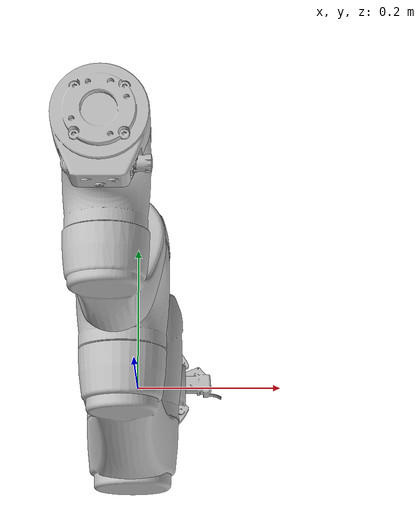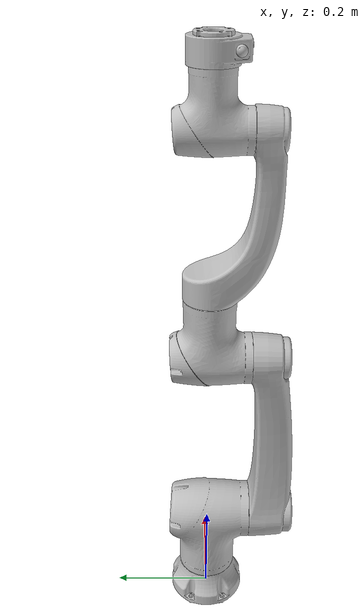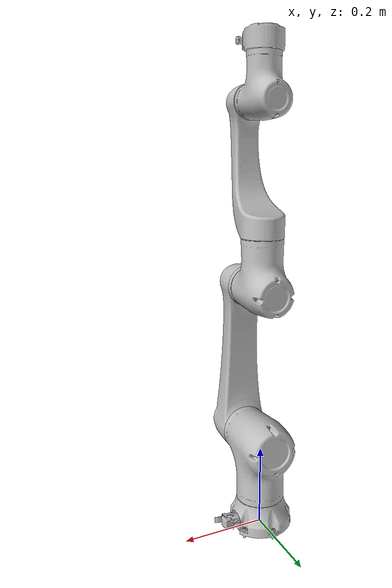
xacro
<robot
  name="elfin5" xmlns:xacro="http://www.ros.org/wiki/xacro">

  <xacro:include filename="$(find elfin_description)/urdf/materials.xacro" />

  <xacro:include filename="$(find elfin_description)/urdf/elfin_robot.gazebo" />

  <xacro:include filename="$(find elfin_description)/urdf/elfin_transmission.xacro" />

  <xacro:property name="PI" value="3.1415926535897931"/>

  <xacro:property name="density" value="3.09"/>

  <link name="world"/>

  <joint name="world_base" type="fixed">
    <origin
      xyz="0 0 0"
      rpy="0 0 0" />
    <parent
      link="world" />
    <child
      link="elfin_base_link" />
  </joint>

  <link name="elfin_base_link"/>

  <joint name="elfin_base_joint" type="fixed">
    <origin
      xyz="0 0 0"
      rpy="0 0 0" />
    <parent
      link="elfin_base_link" />
    <child
      link="elfin_base" />
  </joint>

 <link
    name="elfin_base">
    <inertial>
      <origin
        xyz="-0.000759276386766298 5.75087291643996E-06 0.0302936529364059"
        rpy="0 0 0" />
      <mass
        value="0.976055991186305" />
      <inertia
        ixx="0.00157733373629581"
        ixy="1.16231027909901E-07"
        ixz="-2.16838482265701E-05"
        iyy="0.0014460262404242"
        iyz="-6.75796232258122E-08"
        izz="0.00236575468413022" />
    </inertial>
    <visual>
      <origin
        xyz="0 0 0"
        rpy="0 0 0" />
      <geometry>
        <mesh
          filename="package://elfin_description/meshes/elfin5/elfin_base.STL" />
      </geometry>
      <material
        name="">
        <color
          rgba="0.752941176470588 0.752941176470588 0.752941176470588 1" />
      </material>
    </visual>
    <collision>
      <origin
        xyz="0 0 0"
        rpy="0 0 0" />
      <geometry>
        <mesh
          filename="package://elfin_description/meshes/elfin5/elfin_base.STL" />
      </geometry>
    </collision>
  </link>
  <link
    name="elfin_link1">
    <inertial>
      <origin
        xyz="2.74291285858877E-06 -0.00431106908088009 -0.0357493000420957"
        rpy="0 0 0" />
      <mass
        value="3.25128102774055" />
      <inertia
        ixx="0.0131139015939654"
        ixy="1.53830686193534E-07"
        ixz="4.14641049481159E-07"
        iyy="0.0123861178713592"
        iyz="0.00240614664669851"
        izz="0.00712273876232631" />
    </inertial>
    <visual>
      <origin
        xyz="0 0 0"
        rpy="0 0 0" />
      <geometry>
        <mesh
          filename="package://elfin_description/meshes/elfin5/elfin_link1.STL" />
      </geometry>
      <material
        name="">
        <color
          rgba="0.752941176470588 0.752941176470588 0.752941176470588 1" />
      </material>
    </visual>
    <collision>
      <origin
        xyz="0 0 0"
        rpy="0 0 0" />
      <geometry>
        <mesh
          filename="package://elfin_description/meshes/elfin5/elfin_link1.STL" />
      </geometry>
    </collision>
  </link>
  <joint
    name="elfin_joint1"
    type="revolute">
    <origin
      xyz="0 0 0.22"
      rpy="0 0 0" />
    <parent
      link="elfin_base" />
    <child
      link="elfin_link1" />
    <axis
      xyz="0 0 1" />
    <limit
      lower="-3.14"
      upper="3.14"
      effort="34"
      velocity="1.57" />
  </joint>
  <link
    name="elfin_link2">
    <inertial>
      <origin
        xyz="-4.61141930520168E-06 0.1591743105703 0.127676233728645"
        rpy="0 0 0" />
      <mass
        value="2.80251415493372" />
      <inertia
        ixx="0.0472004127058612"
        ixy="-3.78127975165949E-06"
        ixz="2.96484076164973E-07"
        iyy="0.00279445987467469"
        iyz="0.0015424585085081"
        izz="0.0478757132444163" />
    </inertial>
    <visual>
      <origin
        xyz="0 0 0"
        rpy="0 0 0" />
      <geometry>
        <mesh
          filename="package://elfin_description/meshes/elfin5/elfin_link2.STL" />
      </geometry>
      <material
        name="">
        <color
          rgba="0.752941176470588 0.752941176470588 0.752941176470588 1" />
      </material>
    </visual>
    <collision>
      <origin
        xyz="0 0 0"
        rpy="0 0 0" />
      <geometry>
        <mesh
          filename="package://elfin_description/meshes/elfin5/elfin_link2.STL" />
      </geometry>
    </collision>
  </link>
  <joint
    name="elfin_joint2"
    type="revolute">
    <origin
      xyz="0 0 0"
      rpy="1.5708 0 0" />
    <parent
      link="elfin_link1" />
    <child
      link="elfin_link2" />
    <axis
      xyz="0 0 1" />
    <limit
      lower="-2.35"
      upper="2.35"
      effort="104"
      velocity="1.27" />
  </joint>
  <link
    name="elfin_link3">
    <inertial>
      <origin
        xyz="0.0290082764878197 8.22344842790907E-06 -0.00396673307169731"
        rpy="0 0 0" />
      <mass
        value="1.98577160325313" />
      <inertia
        ixx="0.00325219349943881"
        ixy="-2.70050559654686E-07"
        ixz="-0.00114506857457836"
        iyy="0.00594604197825753"
        iyz="7.00611681888754E-07"
        izz="0.00528005541994538" />
    </inertial>
    <visual>
      <origin
        xyz="0 0 0"
        rpy="0 0 0" />
      <geometry>
        <mesh
          filename="package://elfin_description/meshes/elfin5/elfin_link3.STL" />
      </geometry>
      <material
        name="">
        <color
          rgba="0.752941176470588 0.752941176470588 0.752941176470588 1" />
      </material>
    </visual>
    <collision>
      <origin
        xyz="0 0 0"
        rpy="0 0 0" />
      <geometry>
        <mesh
          filename="package://elfin_description/meshes/elfin5/elfin_link3.STL" />
      </geometry>
    </collision>
  </link>
  <joint
    name="elfin_joint3"
    type="revolute">
    <origin
      xyz="0 0.38 0"
      rpy="-3.1416 0 1.5708" />
    <parent
      link="elfin_link2" />
    <child
      link="elfin_link3" />
    <axis
      xyz="0 0 1" />
    <limit
      lower="-2.61"
      upper="2.61"
      effort="69"
      velocity="1.57" />
  </joint>
  <link
    name="elfin_link4">
    <inertial>
      <origin
        xyz="-3.37325282928927E-05 -0.059246634833044 0.248712399920572"
        rpy="0 0 0" />
      <mass
        value="1.3966627675706" />
      <inertia
        ixx="0.0146417786566676"
        ixy="-1.72570245202171E-06"
        ixz="6.27583250069289E-06"
        iyy="0.0128389262643824"
        iyz="0.00385606704922265"
        izz="0.00311370666742545" />
    </inertial>
    <visual>
      <origin
        xyz="0 0 0"
        rpy="0 0 0" />
      <geometry>
        <mesh
          filename="package://elfin_description/meshes/elfin5/elfin_link4.STL" />
      </geometry>
      <material
        name="">
        <color
          rgba="0.752941176470588 0.752941176470588 0.752941176470588 1" />
      </material>
    </visual>
    <collision>
      <origin
        xyz="0 0 0"
        rpy="0 0 0" />
      <geometry>
        <mesh
          filename="package://elfin_description/meshes/elfin5/elfin_link4.STL" />
      </geometry>
    </collision>
  </link>
  <joint
    name="elfin_joint4"
    type="revolute">
    <origin
      xyz="0 0 0"
      rpy="1.5708 0 1.5708" />
    <parent
      link="elfin_link3" />
    <child
      link="elfin_link4" />
    <axis
      xyz="0 0 1" />
    <limit
      lower="-3.14"
      upper="3.14"
      effort="69"
      velocity="1.57" />
  </joint>
  <link
    name="elfin_link5">
    <inertial>
      <origin
        xyz="-1.05027703236487E-06 -0.0219935502921469 -0.00313939706763143"
        rpy="0 0 0" />
      <mass
        value="1.1871798415152" />
      <inertia
        ixx="0.00223607662477792"
        ixy="7.69598522894212E-08"
        ixz="1.87231069600643E-07"
        iyy="0.00135159849015081"
        iyz="0.000420977801448324"
        izz="0.00193236500775232" />
    </inertial>
    <visual>
      <origin
        xyz="0 0 0"
        rpy="0 0 0" />
      <geometry>
        <mesh
          filename="package://elfin_description/meshes/elfin5/elfin_link5.STL" />
      </geometry>
      <material
        name="">
        <color
          rgba="0.752941176470588 0.752941176470588 0.752941176470588 1" />
      </material>
    </visual>
    <collision>
      <origin
        xyz="0 0 0"
        rpy="0 0 0" />
      <geometry>
        <mesh
          filename="package://elfin_description/meshes/elfin5/elfin_link5.STL" />
      </geometry>
    </collision>
  </link>
  <joint
    name="elfin_joint5"
    type="revolute">
    <origin
      xyz="0 0 0.42"
      rpy="-1.5708 0 0" />
    <parent
      link="elfin_link4" />
    <child
      link="elfin_link5" />
    <axis
      xyz="0 0 1" />
    <limit
      lower="-2.56"
      upper="2.56"
      effort="34"
      velocity="1.57" />
  </joint>
  <link
    name="elfin_link6">
    <inertial>
      <origin
        xyz="0.000198775884625465 -0.00258578679784734 0.122721343515984"
        rpy="0 0 0" />
      <mass
        value="0.227402723766046" />
      <inertia
        ixx="0.000125089189356194"
        ixy="-2.55243323251586E-07"
        ixz="6.94635018518032E-09"
        iyy="0.000130642649353076"
        iyz="1.84890680096304E-07"
        izz="0.00020396393179538" />
    </inertial>
    <visual>
      <origin
        xyz="0 0 0"
        rpy="0 0 0" />
      <geometry>
        <mesh
          filename="package://elfin_description/meshes/elfin5/elfin_link6.STL" />
      </geometry>
      <material
        name="">
        <color
          rgba="0.752941176470588 0.752941176470588 0.752941176470588 1" />
      </material>
    </visual>
    <collision>
      <origin
        xyz="0 0 0"
        rpy="0 0 0" />
      <geometry>
        <mesh
          filename="package://elfin_description/meshes/elfin5/elfin_link6.STL" />
      </geometry>
    </collision>
  </link>
  <joint
    name="elfin_joint6"
    type="revolute">
    <origin
      xyz="0 0 0"
      rpy="1.5708 0 0" />
    <parent
      link="elfin_link5" />
    <child
      link="elfin_link6" />
    <axis
      xyz="0 0 1" />
    <limit
      lower="-3.14"
      upper="3.14"
      effort="34"
      velocity="1.57" />
  </joint>
  <link
    name="elfin_end_link">
  </link>
  <joint
    name="elfin_end_joint"
    type="fixed">
    <origin
      xyz="0 0 0.146"
      rpy="0 0 0" />
    <parent
      link="elfin_link6" />
    <child
      link="elfin_end_link" />
    <axis
      xyz="0 0 0" />
  </joint>

  <link name="elfin_dummy_gripper"/>

  <joint name="elfin_dummy_joint" type="fixed">
    <origin
      xyz="0 -0.0935 0"
      rpy="${PI/2} ${PI/2} 0" />
    <parent
      link="elfin_link6" />
    <child
      link="elfin_dummy_gripper" />
  </joint>

</robot>
